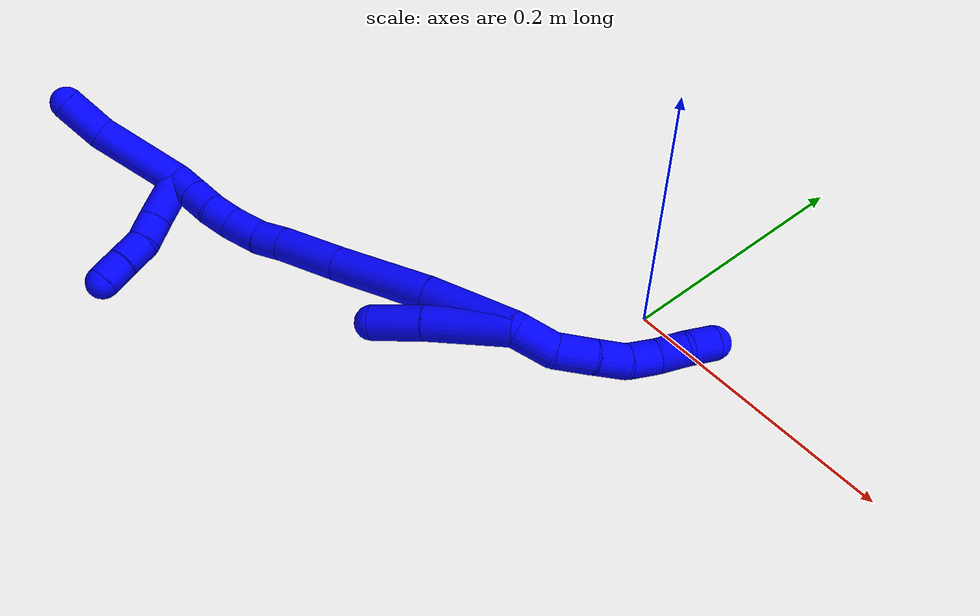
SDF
<sdf version="1.7">
 <world name="default">
  <model name="1">
   <static>0</static>
   <link name="1">
    <collision name="collision-cylinder-e_1_2_8">
     <pose>0.000251 0.005985 -0.013728 -2.73048 0.016747 -0.080279</pose>
     <geometry><cylinder><radius>0.0125</radius><length>0.029956</length></cylinder></geometry>
     <surface>
      <friction><ode><mu>1.16</mu><mu2>1.16</mu2><slip1>0</slip1><slip2>0</slip2></ode></friction>
      <contact><ode><kp>1e+06</kp><kd>1</kd><max_vel>0</max_vel><min_depth>0.001</min_depth></ode></contact>
     </surface>
    </collision>
    <visual name="visual-cylinder-e_1_2_8">
     <pose>0.000251 0.005985 -0.013728 -2.73048 0.016747 -0.080279</pose>
     <geometry><cylinder><radius>0.0125</radius><length>0.029956</length></cylinder></geometry>
     <material><ambient>0 0 1 1</ambient></material>
    </visual>
    <collision name="collision-cylinder-e_2_8_9">
     <pose>0.005371 0.016257 -0.040226 -2.81766 0.346872 -1.64047</pose>
     <geometry><cylinder><radius>0.0125</radius><length>0.028646</length></cylinder></geometry>
     <surface>
      <friction><ode><mu>1.16</mu><mu2>1.16</mu2><slip1>0</slip1><slip2>0</slip2></ode></friction>
      <contact><ode><kp>1e+06</kp><kd>1</kd><max_vel>0</max_vel><min_depth>0.001</min_depth></ode></contact>
     </surface>
    </collision>
    <visual name="visual-cylinder-e_2_8_9">
     <pose>0.005371 0.016257 -0.040226 -2.81766 0.346872 -1.64047</pose>
     <geometry><cylinder><radius>0.0125</radius><length>0.028646</length></cylinder></geometry>
     <material><ambient>0 0 1 1</ambient></material>
    </visual>
    <collision name="collision-cylinder-e_3_9_10">
     <pose>0.014945 0.02533 -0.063024 -2.69635 0.400554 -1.46202</pose>
     <geometry><cylinder><radius>0.0125</radius><length>0.024134</length></cylinder></geometry>
     <surface>
      <friction><ode><mu>1.16</mu><mu2>1.16</mu2><slip1>0</slip1><slip2>0</slip2></ode></friction>
      <contact><ode><kp>1e+06</kp><kd>1</kd><max_vel>0</max_vel><min_depth>0.001</min_depth></ode></contact>
     </surface>
    </collision>
    <visual name="visual-cylinder-e_3_9_10">
     <pose>0.014945 0.02533 -0.063024 -2.69635 0.400554 -1.46202</pose>
     <geometry><cylinder><radius>0.0125</radius><length>0.024134</length></cylinder></geometry>
     <material><ambient>0 0 1 1</ambient></material>
    </visual>
    <collision name="collision-cylinder-e_4_10_11">
     <pose>0.027176 0.033804 -0.08147 -2.72865 0.686084 -2.0808</pose>
     <geometry><cylinder><radius>0.0125</radius><length>0.023756</length></cylinder></geometry>
     <surface>
      <friction><ode><mu>1.16</mu><mu2>1.16</mu2><slip1>0</slip1><slip2>0</slip2></ode></friction>
      <contact><ode><kp>1e+06</kp><kd>1</kd><max_vel>0</max_vel><min_depth>0.001</min_depth></ode></contact>
     </surface>
    </collision>
    <visual name="visual-cylinder-e_4_10_11">
     <pose>0.027176 0.033804 -0.08147 -2.72865 0.686084 -2.0808</pose>
     <geometry><cylinder><radius>0.0125</radius><length>0.023756</length></cylinder></geometry>
     <material><ambient>0 0 1 1</ambient></material>
    </visual>
    <collision name="collision-cylinder-e_5_11_12">
     <pose>0.041672 0.037306 -0.098659 3.12035 0.671445 3.08073</pose>
     <geometry><cylinder><radius>0.0125</radius><length>0.022412</length></cylinder></geometry>
     <surface>
      <friction><ode><mu>1.16</mu><mu2>1.16</mu2><slip1>0</slip1><slip2>0</slip2></ode></friction>
      <contact><ode><kp>1e+06</kp><kd>1</kd><max_vel>0</max_vel><min_depth>0.001</min_depth></ode></contact>
     </surface>
    </collision>
    <visual name="visual-cylinder-e_5_11_12">
     <pose>0.041672 0.037306 -0.098659 3.12035 0.671445 3.08073</pose>
     <geometry><cylinder><radius>0.0125</radius><length>0.022412</length></cylinder></geometry>
     <material><ambient>0 0 1 1</ambient></material>
    </visual>
    <collision name="collision-cylinder-e_6_12_6">
     <pose>0.055455 0.040024 -0.114943 -2.77268 0.702025 -2.19912</pose>
     <geometry><cylinder><radius>0.0125</radius><length>0.021096</length></cylinder></geometry>
     <surface>
      <friction><ode><mu>1.16</mu><mu2>1.16</mu2><slip1>0</slip1><slip2>0</slip2></ode></friction>
      <contact><ode><kp>1e+06</kp><kd>1</kd><max_vel>0</max_vel><min_depth>0.001</min_depth></ode></contact>
     </surface>
    </collision>
    <visual name="visual-cylinder-e_6_12_6">
     <pose>0.055455 0.040024 -0.114943 -2.77268 0.702025 -2.19912</pose>
     <geometry><cylinder><radius>0.0125</radius><length>0.021096</length></cylinder></geometry>
     <material><ambient>0 0 1 1</ambient></material>
    </visual>
    <collision name="collision-cylinder-e_1_2_13">
     <pose>-0.007573 0.003924 0.029787 -0.130978 -0.24692 0.016276</pose>
     <geometry><cylinder><radius>0.0125</radius><length>0.061968</length></cylinder></geometry>
     <surface>
      <friction><ode><mu>1.16</mu><mu2>1.16</mu2><slip1>0</slip1><slip2>0</slip2></ode></friction>
      <contact><ode><kp>1e+06</kp><kd>1</kd><max_vel>0</max_vel><min_depth>0.001</min_depth></ode></contact>
     </surface>
    </collision>
    <visual name="visual-cylinder-e_1_2_13">
     <pose>-0.007573 0.003924 0.029787 -0.130978 -0.24692 0.016276</pose>
     <geometry><cylinder><radius>0.0125</radius><length>0.061968</length></cylinder></geometry>
     <material><ambient>0 0 1 1</ambient></material>
    </visual>
    <collision name="collision-cylinder-e_2_13_5">
     <pose>-0.020098 0.011721 0.07752 -0.212581 -0.26342 0.028267</pose>
     <geometry><cylinder><radius>0.0125</radius><length>0.038032</length></cylinder></geometry>
     <surface>
      <friction><ode><mu>1.16</mu><mu2>1.16</mu2><slip1>0</slip1><slip2>0</slip2></ode></friction>
      <contact><ode><kp>1e+06</kp><kd>1</kd><max_vel>0</max_vel><min_depth>0.001</min_depth></ode></contact>
     </surface>
    </collision>
    <visual name="visual-cylinder-e_2_13_5">
     <pose>-0.020098 0.011721 0.07752 -0.212581 -0.26342 0.028267</pose>
     <geometry><cylinder><radius>0.0125</radius><length>0.038032</length></cylinder></geometry>
     <material><ambient>0 0 1 1</ambient></material>
    </visual>
    <collision name="collision-cylinder-e_1_2_14">
     <pose>0.003837 0.005146 0.033577 -0.152076 0.11249 -0.008579</pose>
     <geometry><cylinder><radius>0.0125</radius><length>0.06837</length></cylinder></geometry>
     <surface>
      <friction><ode><mu>1.16</mu><mu2>1.16</mu2><slip1>0</slip1><slip2>0</slip2></ode></friction>
      <contact><ode><kp>1e+06</kp><kd>1</kd><max_vel>0</max_vel><min_depth>0.001</min_depth></ode></contact>
     </surface>
    </collision>
    <visual name="visual-cylinder-e_1_2_14">
     <pose>0.003837 0.005146 0.033577 -0.152076 0.11249 -0.008579</pose>
     <geometry><cylinder><radius>0.0125</radius><length>0.06837</length></cylinder></geometry>
     <material><ambient>0 0 1 1</ambient></material>
    </visual>
    <collision name="collision-cylinder-e_2_14_15">
     <pose>0.009574 0.016532 0.103952 -0.167981 0.050833 -0.00428</pose>
     <geometry><cylinder><radius>0.0125</radius><length>0.074744</length></cylinder></geometry>
     <surface>
      <friction><ode><mu>1.16</mu><mu2>1.16</mu2><slip1>0</slip1><slip2>0</slip2></ode></friction>
      <contact><ode><kp>1e+06</kp><kd>1</kd><max_vel>0</max_vel><min_depth>0.001</min_depth></ode></contact>
     </surface>
    </collision>
    <visual name="visual-cylinder-e_2_14_15">
     <pose>0.009574 0.016532 0.103952 -0.167981 0.050833 -0.00428</pose>
     <geometry><cylinder><radius>0.0125</radius><length>0.074744</length></cylinder></geometry>
     <material><ambient>0 0 1 1</ambient></material>
    </visual>
    <collision name="collision-cylinder-e_3_15_16">
     <pose>0.013291 0.026737 0.165007 -0.161995 0.073857 -0.005998</pose>
     <geometry><cylinder><radius>0.0125</radius><length>0.049291</length></cylinder></geometry>
     <surface>
      <friction><ode><mu>1.16</mu><mu2>1.16</mu2><slip1>0</slip1><slip2>0</slip2></ode></friction>
      <contact><ode><kp>1e+06</kp><kd>1</kd><max_vel>0</max_vel><min_depth>0.001</min_depth></ode></contact>
     </surface>
    </collision>
    <visual name="visual-cylinder-e_3_15_16">
     <pose>0.013291 0.026737 0.165007 -0.161995 0.073857 -0.005998</pose>
     <geometry><cylinder><radius>0.0125</radius><length>0.049291</length></cylinder></geometry>
     <material><ambient>0 0 1 1</ambient></material>
    </visual>
    <collision name="collision-cylinder-e_4_16_17">
     <pose>0.01496 0.03215 0.199566 -0.139717 -0.014406 0.001008</pose>
     <geometry><cylinder><radius>0.0125</radius><length>0.020809</length></cylinder></geometry>
     <surface>
      <friction><ode><mu>1.16</mu><mu2>1.16</mu2><slip1>0</slip1><slip2>0</slip2></ode></friction>
      <contact><ode><kp>1e+06</kp><kd>1</kd><max_vel>0</max_vel><min_depth>0.001</min_depth></ode></contact>
     </surface>
    </collision>
    <visual name="visual-cylinder-e_4_16_17">
     <pose>0.01496 0.03215 0.199566 -0.139717 -0.014406 0.001008</pose>
     <geometry><cylinder><radius>0.0125</radius><length>0.020809</length></cylinder></geometry>
     <material><ambient>0 0 1 1</ambient></material>
    </visual>
    <collision name="collision-cylinder-e_5_17_18">
     <pose>0.016768 0.034261 0.222729 -0.051511 0.150867 -0.003894</pose>
     <geometry><cylinder><radius>0.0125</radius><length>0.026052</length></cylinder></geometry>
     <surface>
      <friction><ode><mu>1.16</mu><mu2>1.16</mu2><slip1>0</slip1><slip2>0</slip2></ode></friction>
      <contact><ode><kp>1e+06</kp><kd>1</kd><max_vel>0</max_vel><min_depth>0.001</min_depth></ode></contact>
     </surface>
    </collision>
    <visual name="visual-cylinder-e_5_17_18">
     <pose>0.016768 0.034261 0.222729 -0.051511 0.150867 -0.003894</pose>
     <geometry><cylinder><radius>0.0125</radius><length>0.026052</length></cylinder></geometry>
     <material><ambient>0 0 1 1</ambient></material>
    </visual>
    <collision name="collision-cylinder-e_6_18_19">
     <pose>0.020721 0.033824 0.245626 0.109167 0.195089 0.010693</pose>
     <geometry><cylinder><radius>0.0125</radius><length>0.020585</length></cylinder></geometry>
     <surface>
      <friction><ode><mu>1.16</mu><mu2>1.16</mu2><slip1>0</slip1><slip2>0</slip2></ode></friction>
      <contact><ode><kp>1e+06</kp><kd>1</kd><max_vel>0</max_vel><min_depth>0.001</min_depth></ode></contact>
     </surface>
    </collision>
    <visual name="visual-cylinder-e_6_18_19">
     <pose>0.020721 0.033824 0.245626 0.109167 0.195089 0.010693</pose>
     <geometry><cylinder><radius>0.0125</radius><length>0.020585</length></cylinder></geometry>
     <material><ambient>0 0 1 1</ambient></material>
    </visual>
    <collision name="collision-cylinder-e_7_19_20">
     <pose>0.026032 0.032601 0.265102 0.013029 0.33785 0.002222</pose>
     <geometry><cylinder><radius>0.0125</radius><length>0.020009</length></cylinder></geometry>
     <surface>
      <friction><ode><mu>1.16</mu><mu2>1.16</mu2><slip1>0</slip1><slip2>0</slip2></ode></friction>
      <contact><ode><kp>1e+06</kp><kd>1</kd><max_vel>0</max_vel><min_depth>0.001</min_depth></ode></contact>
     </surface>
    </collision>
    <visual name="visual-cylinder-e_7_19_20">
     <pose>0.026032 0.032601 0.265102 0.013029 0.33785 0.002222</pose>
     <geometry><cylinder><radius>0.0125</radius><length>0.020009</length></cylinder></geometry>
     <material><ambient>0 0 1 1</ambient></material>
    </visual>
    <collision name="collision-cylinder-e_8_20_1">
     <pose>0.032697 0.032463 0.284037 0.001601 0.339026 0.000274</pose>
     <geometry><cylinder><radius>0.0125</radius><length>0.02014</length></cylinder></geometry>
     <surface>
      <friction><ode><mu>1.16</mu><mu2>1.16</mu2><slip1>0</slip1><slip2>0</slip2></ode></friction>
      <contact><ode><kp>1e+06</kp><kd>1</kd><max_vel>0</max_vel><min_depth>0.001</min_depth></ode></contact>
     </surface>
    </collision>
    <visual name="visual-cylinder-e_8_20_1">
     <pose>0.032697 0.032463 0.284037 0.001601 0.339026 0.000274</pose>
     <geometry><cylinder><radius>0.0125</radius><length>0.02014</length></cylinder></geometry>
     <material><ambient>0 0 1 1</ambient></material>
    </visual>
    <collision name="collision-cylinder-e_1_1_21">
     <pose>0.038251 0.021003 0.324799 0.350923 0.066121 0.011726</pose>
     <geometry><cylinder><radius>0.0125</radius><length>0.066735</length></cylinder></geometry>
     <surface>
      <friction><ode><mu>1.16</mu><mu2>1.16</mu2><slip1>0</slip1><slip2>0</slip2></ode></friction>
      <contact><ode><kp>1e+06</kp><kd>1</kd><max_vel>0</max_vel><min_depth>0.001</min_depth></ode></contact>
     </surface>
    </collision>
    <visual name="visual-cylinder-e_1_1_21">
     <pose>0.038251 0.021003 0.324799 0.350923 0.066121 0.011726</pose>
     <geometry><cylinder><radius>0.0125</radius><length>0.066735</length></cylinder></geometry>
     <material><ambient>0 0 1 1</ambient></material>
    </visual>
    <collision name="collision-cylinder-e_2_21_4">
     <pose>0.042788 0.000514 0.369828 0.581327 0.140717 0.042157</pose>
     <geometry><cylinder><radius>0.0125</radius><length>0.033265</length></cylinder></geometry>
     <surface>
      <friction><ode><mu>1.16</mu><mu2>1.16</mu2><slip1>0</slip1><slip2>0</slip2></ode></friction>
      <contact><ode><kp>1e+06</kp><kd>1</kd><max_vel>0</max_vel><min_depth>0.001</min_depth></ode></contact>
     </surface>
    </collision>
    <visual name="visual-cylinder-e_2_21_4">
     <pose>0.042788 0.000514 0.369828 0.581327 0.140717 0.042157</pose>
     <geometry><cylinder><radius>0.0125</radius><length>0.033265</length></cylinder></geometry>
     <material><ambient>0 0 1 1</ambient></material>
    </visual>
    <collision name="collision-cylinder-e_1_1_22">
     <pose>0.017833 0.034369 0.293251 -1.71707 -1.46461 1.61119</pose>
     <geometry><cylinder><radius>0.0125</radius><length>0.036633</length></cylinder></geometry>
     <surface>
      <friction><ode><mu>1.16</mu><mu2>1.16</mu2><slip1>0</slip1><slip2>0</slip2></ode></friction>
      <contact><ode><kp>1e+06</kp><kd>1</kd><max_vel>0</max_vel><min_depth>0.001</min_depth></ode></contact>
     </surface>
    </collision>
    <visual name="visual-cylinder-e_1_1_22">
     <pose>0.017833 0.034369 0.293251 -1.71707 -1.46461 1.61119</pose>
     <geometry><cylinder><radius>0.0125</radius><length>0.036633</length></cylinder></geometry>
     <material><ambient>0 0 1 1</ambient></material>
    </visual>
    <collision name="collision-cylinder-e_2_22_23">
     <pose>-0.010673 0.036167 0.291725 3.04366 -1.45005 -3.03109</pose>
     <geometry><cylinder><radius>0.0125</radius><length>0.020735</length></cylinder></geometry>
     <surface>
      <friction><ode><mu>1.16</mu><mu2>1.16</mu2><slip1>0</slip1><slip2>0</slip2></ode></friction>
      <contact><ode><kp>1e+06</kp><kd>1</kd><max_vel>0</max_vel><min_depth>0.001</min_depth></ode></contact>
     </surface>
    </collision>
    <visual name="visual-cylinder-e_2_22_23">
     <pose>-0.010673 0.036167 0.291725 3.04366 -1.45005 -3.03109</pose>
     <geometry><cylinder><radius>0.0125</radius><length>0.020735</length></cylinder></geometry>
     <material><ambient>0 0 1 1</ambient></material>
    </visual>
    <collision name="collision-cylinder-e_3_23_24">
     <pose>-0.031662 0.034669 0.292285 0.651864 -1.36186 -0.534569</pose>
     <geometry><cylinder><radius>0.0125</radius><length>0.021869</length></cylinder></geometry>
     <surface>
      <friction><ode><mu>1.16</mu><mu2>1.16</mu2><slip1>0</slip1><slip2>0</slip2></ode></friction>
      <contact><ode><kp>1e+06</kp><kd>1</kd><max_vel>0</max_vel><min_depth>0.001</min_depth></ode></contact>
     </surface>
    </collision>
    <visual name="visual-cylinder-e_3_23_24">
     <pose>-0.031662 0.034669 0.292285 0.651864 -1.36186 -0.534569</pose>
     <geometry><cylinder><radius>0.0125</radius><length>0.021869</length></cylinder></geometry>
     <material><ambient>0 0 1 1</ambient></material>
    </visual>
    <collision name="collision-cylinder-e_4_24_3">
     <pose>-0.052536 0.032595 0.296014 0.347806 -1.3722 -0.285731</pose>
     <geometry><cylinder><radius>0.0125</radius><length>0.020763</length></cylinder></geometry>
     <surface>
      <friction><ode><mu>1.16</mu><mu2>1.16</mu2><slip1>0</slip1><slip2>0</slip2></ode></friction>
      <contact><ode><kp>1e+06</kp><kd>1</kd><max_vel>0</max_vel><min_depth>0.001</min_depth></ode></contact>
     </surface>
    </collision>
    <visual name="visual-cylinder-e_4_24_3">
     <pose>-0.052536 0.032595 0.296014 0.347806 -1.3722 -0.285731</pose>
     <geometry><cylinder><radius>0.0125</radius><length>0.020763</length></cylinder></geometry>
     <material><ambient>0 0 1 1</ambient></material>
    </visual>
    <collision name="collision-sphere-3">
     <pose>-0.062713 0.031897 0.297939 0 -0 0</pose>
     <geometry><sphere><radius>0.0125</radius></sphere></geometry>
     <surface>
      <friction><ode><mu>1.16</mu><mu2>1.16</mu2><slip1>0</slip1><slip2>0</slip2></ode></friction>
      <contact><ode><kp>1e+06</kp><kd>1</kd><max_vel>0</max_vel><min_depth>0.001</min_depth></ode></contact>
     </surface>
    </collision>
    <visual name="visual-sphere-3">
     <pose>-0.062713 0.031897 0.297939 0 -0 0</pose>
     <geometry><sphere><radius>0.0125</radius></sphere></geometry>
     <material><ambient>0 0 1 1</ambient></material>
    </visual>
    <collision name="collision-sphere-24">
     <pose>-0.042358 0.033293 0.294088 0 -0 0</pose>
     <geometry><sphere><radius>0.0125</radius></sphere></geometry>
     <surface>
      <friction><ode><mu>1.16</mu><mu2>1.16</mu2><slip1>0</slip1><slip2>0</slip2></ode></friction>
      <contact><ode><kp>1e+06</kp><kd>1</kd><max_vel>0</max_vel><min_depth>0.001</min_depth></ode></contact>
     </surface>
    </collision>
    <visual name="visual-sphere-24">
     <pose>-0.042358 0.033293 0.294088 0 -0 0</pose>
     <geometry><sphere><radius>0.0125</radius></sphere></geometry>
     <material><ambient>0 0 1 1</ambient></material>
    </visual>
    <collision name="collision-sphere-23">
     <pose>-0.020965 0.036045 0.290482 0 -0 0</pose>
     <geometry><sphere><radius>0.0125</radius></sphere></geometry>
     <surface>
      <friction><ode><mu>1.16</mu><mu2>1.16</mu2><slip1>0</slip1><slip2>0</slip2></ode></friction>
      <contact><ode><kp>1e+06</kp><kd>1</kd><max_vel>0</max_vel><min_depth>0.001</min_depth></ode></contact>
     </surface>
    </collision>
    <visual name="visual-sphere-23">
     <pose>-0.020965 0.036045 0.290482 0 -0 0</pose>
     <geometry><sphere><radius>0.0125</radius></sphere></geometry>
     <material><ambient>0 0 1 1</ambient></material>
    </visual>
    <collision name="collision-sphere-22">
     <pose>-0.000381 0.036289 0.292968 0 -0 0</pose>
     <geometry><sphere><radius>0.0125</radius></sphere></geometry>
     <surface>
      <friction><ode><mu>1.16</mu><mu2>1.16</mu2><slip1>0</slip1><slip2>0</slip2></ode></friction>
      <contact><ode><kp>1e+06</kp><kd>1</kd><max_vel>0</max_vel><min_depth>0.001</min_depth></ode></contact>
     </surface>
    </collision>
    <visual name="visual-sphere-22">
     <pose>-0.000381 0.036289 0.292968 0 -0 0</pose>
     <geometry><sphere><radius>0.0125</radius></sphere></geometry>
     <material><ambient>0 0 1 1</ambient></material>
    </visual>
    <collision name="collision-sphere-4">
     <pose>0.045121 -0.008529 0.383591 0 -0 0</pose>
     <geometry><sphere><radius>0.0125</radius></sphere></geometry>
     <surface>
      <friction><ode><mu>1.16</mu><mu2>1.16</mu2><slip1>0</slip1><slip2>0</slip2></ode></friction>
      <contact><ode><kp>1e+06</kp><kd>1</kd><max_vel>0</max_vel><min_depth>0.001</min_depth></ode></contact>
     </surface>
    </collision>
    <visual name="visual-sphere-4">
     <pose>0.045121 -0.008529 0.383591 0 -0 0</pose>
     <geometry><sphere><radius>0.0125</radius></sphere></geometry>
     <material><ambient>0 0 1 1</ambient></material>
    </visual>
    <collision name="collision-sphere-21">
     <pose>0.040455 0.009557 0.356064 0 -0 0</pose>
     <geometry><sphere><radius>0.0125</radius></sphere></geometry>
     <surface>
      <friction><ode><mu>1.16</mu><mu2>1.16</mu2><slip1>0</slip1><slip2>0</slip2></ode></friction>
      <contact><ode><kp>1e+06</kp><kd>1</kd><max_vel>0</max_vel><min_depth>0.001</min_depth></ode></contact>
     </surface>
    </collision>
    <visual name="visual-sphere-21">
     <pose>0.040455 0.009557 0.356064 0 -0 0</pose>
     <geometry><sphere><radius>0.0125</radius></sphere></geometry>
     <material><ambient>0 0 1 1</ambient></material>
    </visual>
    <collision name="collision-sphere-1">
     <pose>0.036046 0.032448 0.293534 0 -0 0</pose>
     <geometry><sphere><radius>0.0125</radius></sphere></geometry>
     <surface>
      <friction><ode><mu>1.16</mu><mu2>1.16</mu2><slip1>0</slip1><slip2>0</slip2></ode></friction>
      <contact><ode><kp>1e+06</kp><kd>1</kd><max_vel>0</max_vel><min_depth>0.001</min_depth></ode></contact>
     </surface>
    </collision>
    <visual name="visual-sphere-1">
     <pose>0.036046 0.032448 0.293534 0 -0 0</pose>
     <geometry><sphere><radius>0.0125</radius></sphere></geometry>
     <material><ambient>0 0 1 1</ambient></material>
    </visual>
    <collision name="collision-sphere-12">
     <pose>0.048643 0.03712 -0.107431 0 -0 0</pose>
     <geometry><sphere><radius>0.0125</radius></sphere></geometry>
     <surface>
      <friction><ode><mu>1.16</mu><mu2>1.16</mu2><slip1>0</slip1><slip2>0</slip2></ode></friction>
      <contact><ode><kp>1e+06</kp><kd>1</kd><max_vel>0</max_vel><min_depth>0.001</min_depth></ode></contact>
     </surface>
    </collision>
    <visual name="visual-sphere-12">
     <pose>0.048643 0.03712 -0.107431 0 -0 0</pose>
     <geometry><sphere><radius>0.0125</radius></sphere></geometry>
     <material><ambient>0 0 1 1</ambient></material>
    </visual>
    <collision name="collision-sphere-11">
     <pose>0.0347 0.037492 -0.089888 0 -0 0</pose>
     <geometry><sphere><radius>0.0125</radius></sphere></geometry>
     <surface>
      <friction><ode><mu>1.16</mu><mu2>1.16</mu2><slip1>0</slip1><slip2>0</slip2></ode></friction>
      <contact><ode><kp>1e+06</kp><kd>1</kd><max_vel>0</max_vel><min_depth>0.001</min_depth></ode></contact>
     </surface>
    </collision>
    <visual name="visual-sphere-11">
     <pose>0.0347 0.037492 -0.089888 0 -0 0</pose>
     <geometry><sphere><radius>0.0125</radius></sphere></geometry>
     <material><ambient>0 0 1 1</ambient></material>
    </visual>
    <collision name="collision-sphere-10">
     <pose>0.019651 0.030116 -0.073052 0 -0 0</pose>
     <geometry><sphere><radius>0.0125</radius></sphere></geometry>
     <surface>
      <friction><ode><mu>1.16</mu><mu2>1.16</mu2><slip1>0</slip1><slip2>0</slip2></ode></friction>
      <contact><ode><kp>1e+06</kp><kd>1</kd><max_vel>0</max_vel><min_depth>0.001</min_depth></ode></contact>
     </surface>
    </collision>
    <visual name="visual-sphere-10">
     <pose>0.019651 0.030116 -0.073052 0 -0 0</pose>
     <geometry><sphere><radius>0.0125</radius></sphere></geometry>
     <material><ambient>0 0 1 1</ambient></material>
    </visual>
    <collision name="collision-sphere-9">
     <pose>0.01024 0.020545 -0.052995 0 -0 0</pose>
     <geometry><sphere><radius>0.0125</radius></sphere></geometry>
     <surface>
      <friction><ode><mu>1.16</mu><mu2>1.16</mu2><slip1>0</slip1><slip2>0</slip2></ode></friction>
      <contact><ode><kp>1e+06</kp><kd>1</kd><max_vel>0</max_vel><min_depth>0.001</min_depth></ode></contact>
     </surface>
    </collision>
    <visual name="visual-sphere-9">
     <pose>0.01024 0.020545 -0.052995 0 -0 0</pose>
     <geometry><sphere><radius>0.0125</radius></sphere></geometry>
     <material><ambient>0 0 1 1</ambient></material>
    </visual>
    <collision name="collision-sphere-2">
     <geometry><sphere><radius>0.0125</radius></sphere></geometry>
     <surface>
      <friction><ode><mu>1.16</mu><mu2>1.16</mu2><slip1>0</slip1><slip2>0</slip2></ode></friction>
      <contact><ode><kp>1e+06</kp><kd>1</kd><max_vel>0</max_vel><min_depth>0.001</min_depth></ode></contact>
     </surface>
    </collision>
    <visual name="visual-sphere-2">
     <geometry><sphere><radius>0.0125</radius></sphere></geometry>
     <material><ambient>0 0 1 1</ambient></material>
    </visual>
    <collision name="collision-sphere-19">
     <pose>0.022716 0.032724 0.255663 0 -0 0</pose>
     <geometry><sphere><radius>0.0125</radius></sphere></geometry>
     <surface>
      <friction><ode><mu>1.16</mu><mu2>1.16</mu2><slip1>0</slip1><slip2>0</slip2></ode></friction>
      <contact><ode><kp>1e+06</kp><kd>1</kd><max_vel>0</max_vel><min_depth>0.001</min_depth></ode></contact>
     </surface>
    </collision>
    <visual name="visual-sphere-19">
     <pose>0.022716 0.032724 0.255663 0 -0 0</pose>
     <geometry><sphere><radius>0.0125</radius></sphere></geometry>
     <material><ambient>0 0 1 1</ambient></material>
    </visual>
    <collision name="collision-sphere-8">
     <pose>0.000502 0.01197 -0.027456 0 -0 0</pose>
     <geometry><sphere><radius>0.0125</radius></sphere></geometry>
     <surface>
      <friction><ode><mu>1.16</mu><mu2>1.16</mu2><slip1>0</slip1><slip2>0</slip2></ode></friction>
      <contact><ode><kp>1e+06</kp><kd>1</kd><max_vel>0</max_vel><min_depth>0.001</min_depth></ode></contact>
     </surface>
    </collision>
    <visual name="visual-sphere-8">
     <pose>0.000502 0.01197 -0.027456 0 -0 0</pose>
     <geometry><sphere><radius>0.0125</radius></sphere></geometry>
     <material><ambient>0 0 1 1</ambient></material>
    </visual>
    <collision name="collision-sphere-6">
     <pose>0.062266 0.042928 -0.122454 0 -0 0</pose>
     <geometry><sphere><radius>0.0125</radius></sphere></geometry>
     <surface>
      <friction><ode><mu>1.16</mu><mu2>1.16</mu2><slip1>0</slip1><slip2>0</slip2></ode></friction>
      <contact><ode><kp>1e+06</kp><kd>1</kd><max_vel>0</max_vel><min_depth>0.001</min_depth></ode></contact>
     </surface>
    </collision>
    <visual name="visual-sphere-6">
     <pose>0.062266 0.042928 -0.122454 0 -0 0</pose>
     <geometry><sphere><radius>0.0125</radius></sphere></geometry>
     <material><ambient>0 0 1 1</ambient></material>
    </visual>
    <collision name="collision-sphere-13">
     <pose>-0.015146 0.007848 0.059574 0 -0 0</pose>
     <geometry><sphere><radius>0.0125</radius></sphere></geometry>
     <surface>
      <friction><ode><mu>1.16</mu><mu2>1.16</mu2><slip1>0</slip1><slip2>0</slip2></ode></friction>
      <contact><ode><kp>1e+06</kp><kd>1</kd><max_vel>0</max_vel><min_depth>0.001</min_depth></ode></contact>
     </surface>
    </collision>
    <visual name="visual-sphere-13">
     <pose>-0.015146 0.007848 0.059574 0 -0 0</pose>
     <geometry><sphere><radius>0.0125</radius></sphere></geometry>
     <material><ambient>0 0 1 1</ambient></material>
    </visual>
    <collision name="collision-sphere-5">
     <pose>-0.025049 0.015595 0.095467 0 -0 0</pose>
     <geometry><sphere><radius>0.0125</radius></sphere></geometry>
     <surface>
      <friction><ode><mu>1.16</mu><mu2>1.16</mu2><slip1>0</slip1><slip2>0</slip2></ode></friction>
      <contact><ode><kp>1e+06</kp><kd>1</kd><max_vel>0</max_vel><min_depth>0.001</min_depth></ode></contact>
     </surface>
    </collision>
    <visual name="visual-sphere-5">
     <pose>-0.025049 0.015595 0.095467 0 -0 0</pose>
     <geometry><sphere><radius>0.0125</radius></sphere></geometry>
     <material><ambient>0 0 1 1</ambient></material>
    </visual>
    <collision name="collision-sphere-14">
     <pose>0.007675 0.010292 0.067153 0 -0 0</pose>
     <geometry><sphere><radius>0.0125</radius></sphere></geometry>
     <surface>
      <friction><ode><mu>1.16</mu><mu2>1.16</mu2><slip1>0</slip1><slip2>0</slip2></ode></friction>
      <contact><ode><kp>1e+06</kp><kd>1</kd><max_vel>0</max_vel><min_depth>0.001</min_depth></ode></contact>
     </surface>
    </collision>
    <visual name="visual-sphere-14">
     <pose>0.007675 0.010292 0.067153 0 -0 0</pose>
     <geometry><sphere><radius>0.0125</radius></sphere></geometry>
     <material><ambient>0 0 1 1</ambient></material>
    </visual>
    <collision name="collision-sphere-15">
     <pose>0.011473 0.022772 0.14075 0 -0 0</pose>
     <geometry><sphere><radius>0.0125</radius></sphere></geometry>
     <surface>
      <friction><ode><mu>1.16</mu><mu2>1.16</mu2><slip1>0</slip1><slip2>0</slip2></ode></friction>
      <contact><ode><kp>1e+06</kp><kd>1</kd><max_vel>0</max_vel><min_depth>0.001</min_depth></ode></contact>
     </surface>
    </collision>
    <visual name="visual-sphere-15">
     <pose>0.011473 0.022772 0.14075 0 -0 0</pose>
     <geometry><sphere><radius>0.0125</radius></sphere></geometry>
     <material><ambient>0 0 1 1</ambient></material>
    </visual>
    <collision name="collision-sphere-16">
     <pose>0.01511 0.030701 0.189264 0 -0 0</pose>
     <geometry><sphere><radius>0.0125</radius></sphere></geometry>
     <surface>
      <friction><ode><mu>1.16</mu><mu2>1.16</mu2><slip1>0</slip1><slip2>0</slip2></ode></friction>
      <contact><ode><kp>1e+06</kp><kd>1</kd><max_vel>0</max_vel><min_depth>0.001</min_depth></ode></contact>
     </surface>
    </collision>
    <visual name="visual-sphere-16">
     <pose>0.01511 0.030701 0.189264 0 -0 0</pose>
     <geometry><sphere><radius>0.0125</radius></sphere></geometry>
     <material><ambient>0 0 1 1</ambient></material>
    </visual>
    <collision name="collision-sphere-17">
     <pose>0.01481 0.033598 0.209868 0 -0 0</pose>
     <geometry><sphere><radius>0.0125</radius></sphere></geometry>
     <surface>
      <friction><ode><mu>1.16</mu><mu2>1.16</mu2><slip1>0</slip1><slip2>0</slip2></ode></friction>
      <contact><ode><kp>1e+06</kp><kd>1</kd><max_vel>0</max_vel><min_depth>0.001</min_depth></ode></contact>
     </surface>
    </collision>
    <visual name="visual-sphere-17">
     <pose>0.01481 0.033598 0.209868 0 -0 0</pose>
     <geometry><sphere><radius>0.0125</radius></sphere></geometry>
     <material><ambient>0 0 1 1</ambient></material>
    </visual>
    <collision name="collision-sphere-18">
     <pose>0.018725 0.034925 0.235589 0 -0 0</pose>
     <geometry><sphere><radius>0.0125</radius></sphere></geometry>
     <surface>
      <friction><ode><mu>1.16</mu><mu2>1.16</mu2><slip1>0</slip1><slip2>0</slip2></ode></friction>
      <contact><ode><kp>1e+06</kp><kd>1</kd><max_vel>0</max_vel><min_depth>0.001</min_depth></ode></contact>
     </surface>
    </collision>
    <visual name="visual-sphere-18">
     <pose>0.018725 0.034925 0.235589 0 -0 0</pose>
     <geometry><sphere><radius>0.0125</radius></sphere></geometry>
     <material><ambient>0 0 1 1</ambient></material>
    </visual>
    <collision name="collision-sphere-20">
     <pose>0.029348 0.032478 0.27454 0 -0 0</pose>
     <geometry><sphere><radius>0.0125</radius></sphere></geometry>
     <surface>
      <friction><ode><mu>1.16</mu><mu2>1.16</mu2><slip1>0</slip1><slip2>0</slip2></ode></friction>
      <contact><ode><kp>1e+06</kp><kd>1</kd><max_vel>0</max_vel><min_depth>0.001</min_depth></ode></contact>
     </surface>
    </collision>
    <visual name="visual-sphere-20">
     <pose>0.029348 0.032478 0.27454 0 -0 0</pose>
     <geometry><sphere><radius>0.0125</radius></sphere></geometry>
     <material><ambient>0 0 1 1</ambient></material>
    </visual>
    <inertial>
     <pose>0.011533 0.021014 0.136908 0 -0 0</pose>
     <mass>0.75</mass>
     <inertia><ixx>0.000139</ixx><ixy>0</ixy><ixz>0</ixz><iyy>0.000153</iyy><iyz>0</iyz><izz>2e-05</izz></inertia>
    </inertial>
   </link>
   <pose>-0.025606 -0.10382 0.04414 -1.52694 -0.231138 2.01584</pose>
  </model>
 </world>
</sdf>
